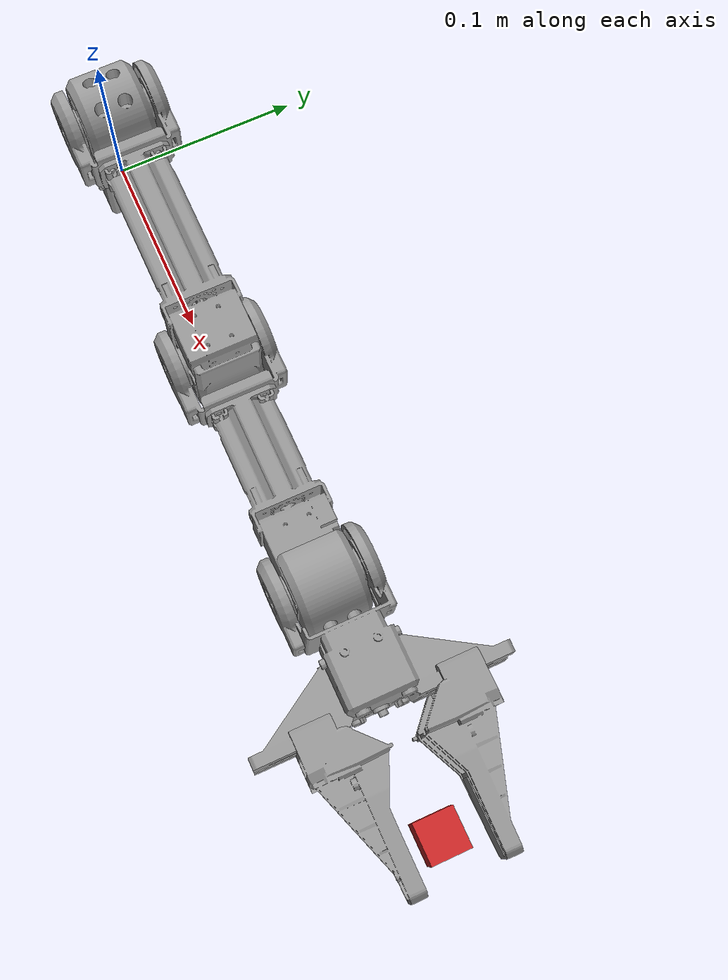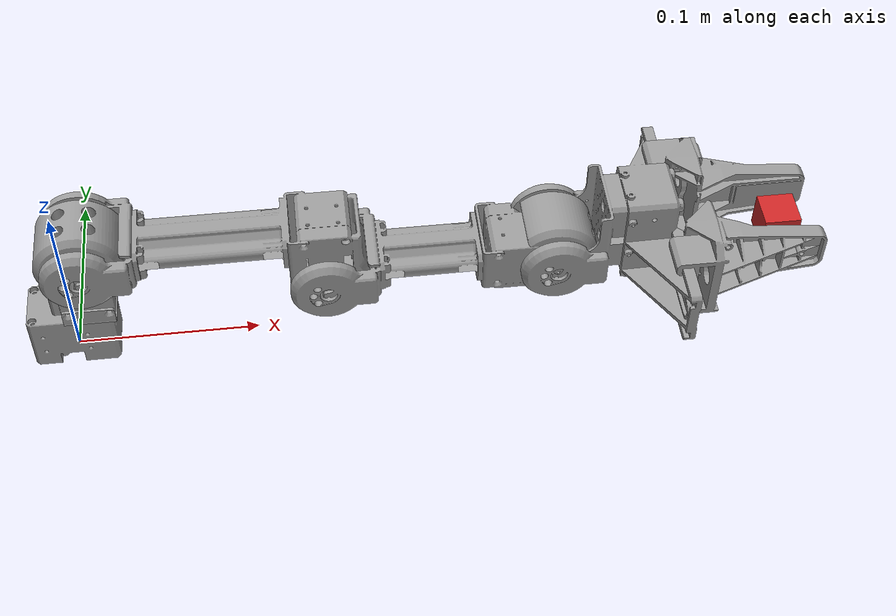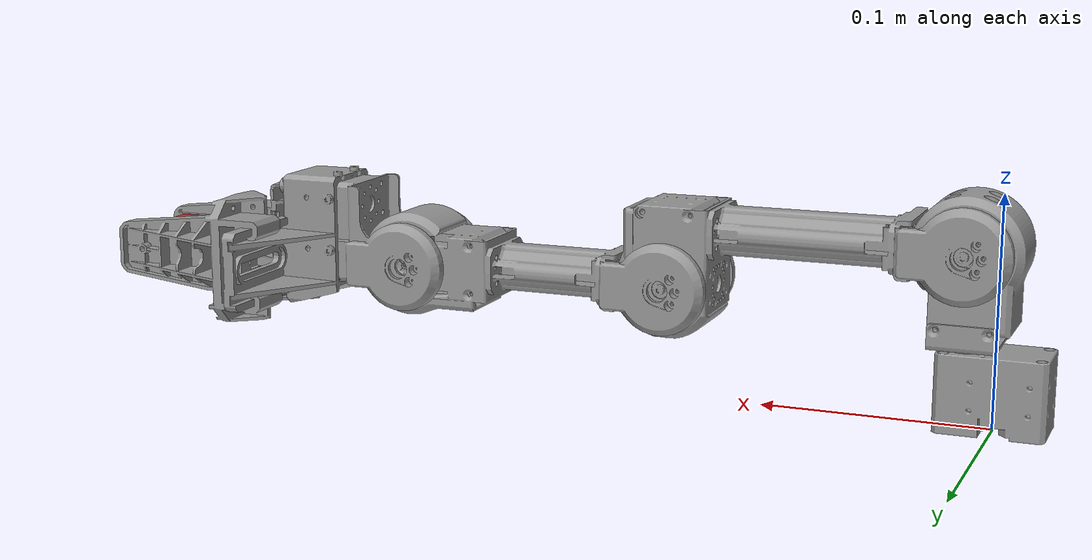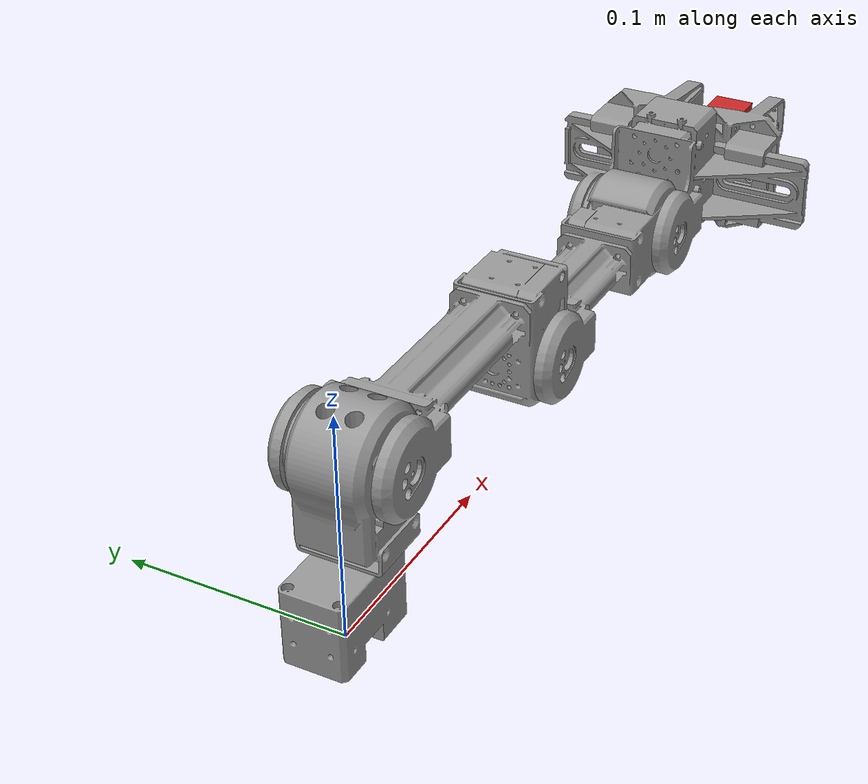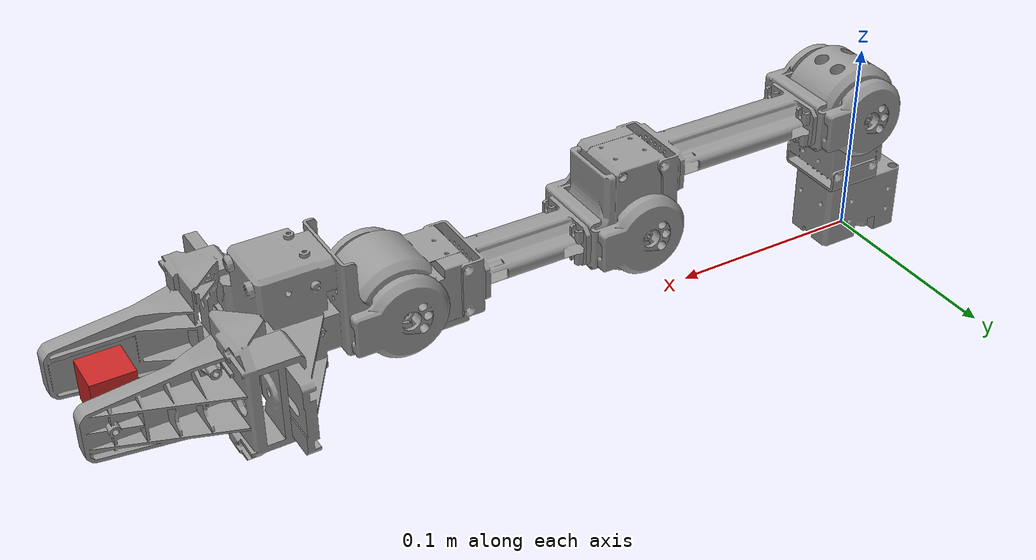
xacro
<?xml version="1.0"?>
<!-- Open_Manipulator Chain -->
<robot name="open_manipulator" xmlns:xacro="http://ros.org/wiki/xacro">
  <!-- World -->
  <link name="world"/>

  <!-- World fixed joint-->
  <joint name="world_fixed" type="fixed">
    <origin xyz="0 0 0" rpy="0 0 0"/>
    <parent link="world"/>
    <child link="link1"/>
  </joint>

  <!-- Link 1 -->
  <link name="link1">
    <visual>
      <origin xyz="0 0 0" rpy="0 0 0"/>
      <geometry>
        <mesh filename="package://open_manipulator_description/meshes/chain_link1.stl" scale="0.001 0.001 0.001"/>
      </geometry>
      <material name="grey"/>
    </visual>

    <collision>
      <origin xyz="0 0 0" rpy="0 0 0"/>
      <geometry>
        <mesh filename="package://open_manipulator_description/meshes/chain_link1.stl" scale="0.001 0.001 0.001"/>
      </geometry>
    </collision>

    <inertial>
      <origin xyz="3.0876154e-04 0.0000000e+00 -1.2176461e-04" />
      <mass value="7.9119962e-02" />
      <inertia ixx="1.2505234e-05" ixy="0.0" ixz="-1.7855208e-07"
               iyy="2.1898364e-05" iyz="0.0"
               izz="1.9267361e-05" />
    </inertial>
  </link>

  <!-- Joint 1 -->
  <joint name="joint1" type="fixed">
    <parent link="link1"/>
    <child link="link2"/>
    <origin xyz="0.012 0.0 0.017" rpy="0 0 0"/>
    <axis xyz="0 0 1"/>
    <limit velocity="4.8" effort="1" lower="${-pi*0.9}" upper="${pi*0.9}" />
  </joint>

  <!--  Link 2 -->
  <link name="link2">
    <visual>
      <origin xyz="0 0 0.019" rpy="0 0 0"/>
      <geometry>
        <mesh filename="package://open_manipulator_description/meshes/chain_link2.stl" scale="0.001 0.001 0.001"/>
      </geometry>
      <material name="grey"/>
    </visual>

    <collision>
      <origin xyz="0 0 0.019" rpy="0 0 0"/>
      <geometry>
        <mesh filename="package://open_manipulator_description/meshes/chain_link2.stl" scale="0.001 0.001 0.001"/>
      </geometry>
    </collision>

    <inertial>
      <origin xyz="-3.0184870e-04 5.4043684e-04 ${0.018 + 2.9433464e-02}" />
      <mass value="9.8406837e-02" />
      <inertia ixx="3.4543422e-05" ixy="-1.6031095e-08" ixz="-3.8375155e-07"
               iyy="3.2689329e-05" iyz="2.8511935e-08"
               izz="1.8850320e-05" />
    </inertial>
  </link>

  <!--  Joint 2 -->
  <joint name="joint2" type="revolute">
    <parent link="link2"/>
    <child link="link3"/>
    <origin xyz="0.0 0.0 0.0595" rpy="${pi*0.5} 0 0"/>
    <axis xyz="0 0 1"/>
    <limit velocity="4.8" effort="1" lower="${0}" upper="${pi*0.5 + pi*0.57}" />
  </joint>

  <!--  Link 3 -->
  <link name="link3">
    <visual>
      <origin xyz="0 0 0" rpy="${-pi*0.5} 0 ${-pi*0.5}"/>
      <geometry>
        <mesh filename="package://open_manipulator_description/meshes/chain_link3.stl" scale="0.001 0.001 0.001"/>
      </geometry>
      <material name="grey"/>
    </visual>

    <collision>
      <origin xyz="0 0 0" rpy="${-pi*0.5} 0 ${-pi*0.5}"/>
      <geometry>
        <mesh filename="package://open_manipulator_description/meshes/chain_link3.stl" scale="0.001 0.001 0.001"/>
      </geometry>
    </collision>

    <inertial>
      <origin xyz="1.0308393e-02 3.7743363e-04 1.0170197e-01" />
      <mass value="1.3850917e-01" />
      <inertia ixx="3.3055381e-04" ixy="-9.7940978e-08" ixz="-3.8505711e-05"
               iyy="3.4290447e-04" iyz="-1.5717516e-06"
               izz="6.0346498e-05" />
    </inertial>
  </link>

  <!--  Joint 3 -->
  <joint name="joint3" type="revolute">
    <parent link="link3"/>
    <child link="link4"/>
    <origin xyz="0.128 -0.024 0" rpy="0 0 0"/>
    <axis xyz="0 0 1"/>
    <limit velocity="4.8" effort="1" lower="${-pi*0.44-pi*0.3}" upper="${0}" />
  </joint>

  <!--  Link 4 -->
  <link name="link4">
    <visual>
      <origin xyz="0 0 0" rpy="${pi*0.5} 0 0"/>
      <geometry>
        <mesh filename="package://open_manipulator_description/meshes/chain_link4.stl" scale="0.001 0.001 0.001"/>
      </geometry>
      <material name="grey"/>
    </visual>

    <collision>
      <origin xyz="0 0 0" rpy="${pi*0.5} 0 0"/>
      <geometry>
        <mesh filename="package://open_manipulator_description/meshes/chain_link4.stl" scale="0.001 0.001 0.001"/>
      </geometry>
    </collision>

    <inertial>
      <origin xyz="9.0909590e-02 3.8929816e-04 2.2413279e-04" />
      <mass value="1.3274562e-01" />
      <inertia ixx="3.0654178e-05" ixy="-1.2764155e-06" ixz="-2.6874417e-07"
               iyy="2.4230292e-04" iyz="1.1559550e-08"
               izz="2.5155057e-04" />
    </inertial>
  </link>

 <!--  Joint 4 -->
  <joint name="joint4" type="revolute">
    <parent link="link4"/>
    <child link="link5"/>
    <origin xyz="0.124 0.0 0.0" rpy="0 0 0"/>
    <axis xyz="0 0 1"/>
    <limit velocity="4.8" effort="1" lower="${-pi*0.57}" upper="${pi*0.65}" />
  </joint>

  <!--  Link 5 -->
  <link name="link5">
    <visual>
      <origin xyz="0 0 0" rpy="${-pi/2} 0 0"/>
      <geometry>
        <mesh filename="package://open_manipulator_description/meshes/chain_link5.stl" scale="0.001 0.001 0.001"/>
      </geometry>
      <material name="grey"/>
    </visual>

    <collision>
      <origin xyz="0 0 0" rpy="${-pi/2} 0 0"/>
      <geometry>
        <mesh filename="package://open_manipulator_description/meshes/chain_link5.stl" scale="0.001 0.001 0.001"/>
      </geometry>
    </collision>

    <inertial>
      <origin xyz="4.4206755e-02 3.6839985e-07 8.9142216e-03" />
      <mass value="1.0e-09" />
     <inertia ixx="1.0e-09" ixy="0.0" ixz="0.0"
               iyy="1.0e-09" iyz="0.0"
               izz="1.0e-09" />
    </inertial>
  </link>

    <!--  Gripper joint -->
  <joint name="gripper" type="fixed">
    <parent link="link5"/>
    <child link="gripper_link"/>
    <origin xyz="0.0817 0 0.021" rpy="0 0 0"/>
    <axis xyz="0 0 1"/>
    <limit velocity="4.8" effort="1" lower="-0.010" upper="0.019" />
  </joint>

  <!--  Gripper link -->
  <link name="gripper_link">
    <visual>
      <origin xyz="0.0 0.0 0" rpy="${pi/2} 0 0"/>
      <geometry>
        <mesh filename="package://open_manipulator_description/meshes/chain_link_grip_l.stl" scale="0.001 0.001 0.001"/>
      </geometry>
      <material name="grey"/>
    </visual>

    <collision>
      <origin xyz="0.0 0.0 0" rpy="${pi/2} 0 0"/>
      <geometry>
        <mesh filename="package://open_manipulator_description/meshes/chain_link_grip_l.stl" scale="0.001 0.001 0.001"/>
      </geometry>
    </collision>

    <inertial>
      <origin xyz="0 0 0" />
      <mass value="1.0e-09" />
     <inertia ixx="1.0e-09" ixy="0.0" ixz="0.0"
               iyy="1.0e-09" iyz="0.0"
               izz="1.0e-09" />
    </inertial>
  </link>

  <!--  Gripper joint sub -->
  <joint name="gripper_sub" type="fixed">
    <parent link="link5"/>
    <child link="gripper_link_sub"/>
    <origin xyz="0.0817 0 -0.021" rpy="0 0 0"/>
    <axis xyz="0 0 1"/>
    <limit velocity="4.8" effort="1" lower="-0.010" upper="0.019" />
    <mimic joint="gripper" multiplier="1"/>
  </joint>

  <!--  Gripper link sub -->
  <link name="gripper_link_sub">
    <visual>
      <origin xyz="0.0 -0.0 0" rpy="${pi/2} 0 0"/>
      <geometry>
        <mesh filename="package://open_manipulator_description/meshes/chain_link_grip_r.stl" scale="0.001 0.001 0.001"/>
      </geometry>
      <material name="grey"/>
    </visual>

    <collision>
      <origin xyz="0.0 -0.0 0" rpy="${pi/2} 0 0"/>
      <geometry>
        <mesh filename="package://open_manipulator_description/meshes/chain_link_grip_r.stl" scale="0.001 0.001 0.001"/>
      </geometry>
    </collision>

    <inertial>
     <origin xyz="0 0 0" />
      <mass value="1.0e-09" />
     <inertia ixx="1.0e-09" ixy="0.0" ixz="0.0"
               iyy="1.0e-09" iyz="0.0"
               izz="1.0e-09" />
    </inertial>
  </link>

  <!-- end effector joint -->
  <joint name="end_effector_joint" type="fixed">
    <origin xyz="0.126 0.0 0.0" rpy="${-pi/2} 0 0"/>
    <parent link="link5"/>
    <child link="end_effector_link"/>
  </joint>

  <!-- end effector link -->
  <link name="end_effector_link">
    <visual>
      <origin xyz="0 0 0" rpy="0 0 0"/>
      <geometry>
        <box size="0.02 0.02 0.02" />
      </geometry>
      <material name="red"/>
     </visual>

    <inertial>
     <origin xyz="0 0 0" />
      <mass value="1.0e-09" />
     <inertia ixx="1.0e-09" ixy="0.0" ixz="0.0"
               iyy="1.0e-09" iyz="0.0"
               izz="1.0e-09" />
    </inertial>
  </link>

</robot>
